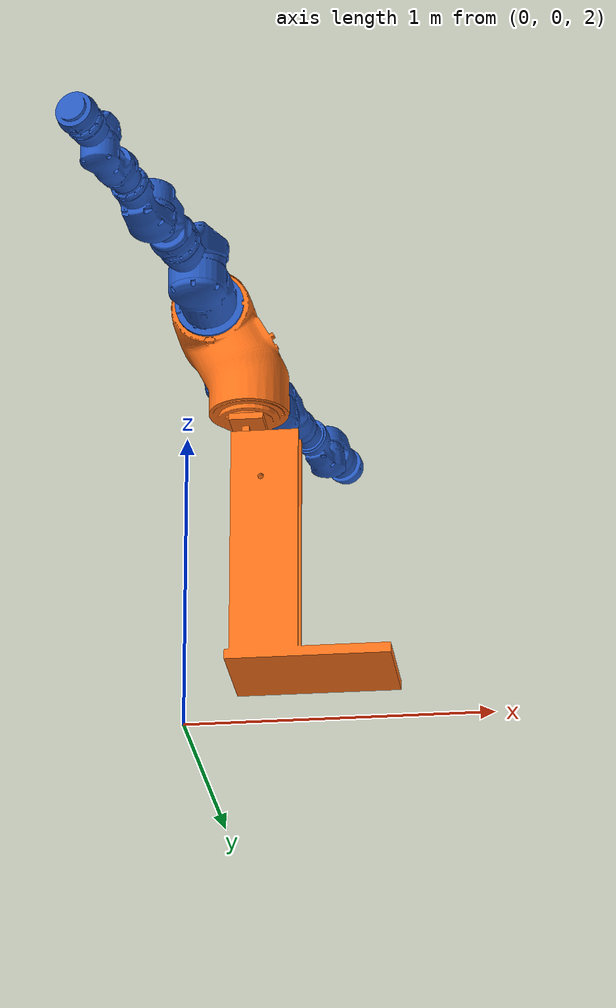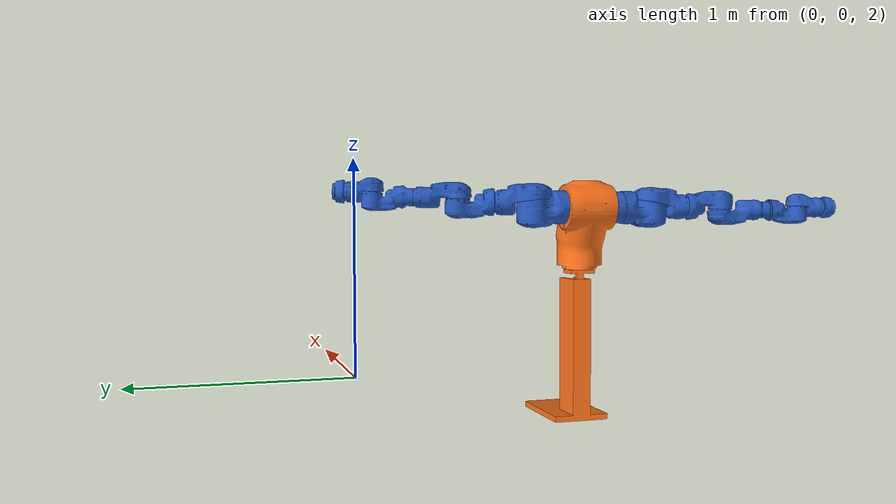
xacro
<?xml version="1.0" encoding="utf-8"?>
<robot xmlns:xacro="http://www.ros.org/wiki/xacro" name="dual_arm">
  <link name="world"/>
  <joint name="world_fixed" type="fixed">
    <parent link="world"/>
    <child link="base_link"/>
    <origin xyz="0 0 1.5" rpy="0 0 0"/>
  </joint>
<link
    name="base_link">
    <inertial>
      <origin
        xyz="0.473639700587231 0.397476333645686 1.26458028542163"
        rpy="0 0 0" />
      <mass
        value="86.6808960041726" />
      <inertia
        ixx="2.67583600672287"
        ixy="1.50972502397836E-05"
        ixz="2.78418630517407E-06"
        iyy="1.18500984520368"
        iyz="0.000347236755515199"
        izz="3.19773833781896" />
    </inertial>
    <visual>
      <origin
        xyz="0 0 0"
        rpy="0 0 0" />
      <geometry>
        <mesh
          filename="file://$(find dual_arm_description)/meshes/base_link.STL" />
      </geometry>
      <material
        name="">
        <color rgba="1.0 0.45 0.10 1" />
      </material>
    </visual>
    <collision>
      <origin
        xyz="0 0 0"
        rpy="0 0 0" />
      <geometry>
        <mesh
          filename="file://$(find dual_arm_description)/meshes/base_link.STL" />
      </geometry>
    </collision>
  </link>
  <link
    name="pinion">
    <inertial>
      <origin
        xyz="0.0200000000002041 -2.00848877902615E-05 -2.09149558783039E-10"
        rpy="0 0 0" />
      <mass
        value="0.365883328771665" />
      <inertia
        ixx="0.000595664172915917"
        ixy="2.53164029756878E-12"
        ixz="-2.6047974978879E-12"
        iyy="0.000346653639764482"
        iyz="-2.39513308665042E-19"
        izz="0.000346579420823879" />
    </inertial>
    <visual>
      <origin
        xyz="0 0 0"
        rpy="0 0 0" />
      <geometry>
        <mesh
          filename="file://$(find dual_arm_description)/meshes/pinion.STL" />
      </geometry>
      <material
        name="">
       <color rgba="1.0 0.45 0.10 1" />
      </material>
    </visual>
    <collision>
      <origin
        xyz="0 0 0"
        rpy="0 0 0" />
      <geometry>
        <mesh
          filename="file://$(find dual_arm_description)/meshes/pinion.STL" />
      </geometry>
    </collision>
  </link>
  <joint
    name="pinion_joint"
    type="revolute">
    <origin
      xyz="0.415954526450101 -1.28459874039883 0.763294581934258"
      rpy="-0.792054492842415 0 1.5707963270975" />
    <parent
      link="base_link" />
    <child
      link="pinion" />
    <axis
      xyz="1 0 0" />

    <limit lower="-0.001" upper="7.2" effort="1000" velocity="20.0"/>
  </joint>
  <link
    name="rack">
    <inertial>
      <origin
        xyz="-0.34822673656725 0.0201228480459993 0.0194191104798078"
        rpy="0 0 0" />
      <mass
        value="1.30035662806491" />
      <inertia
        ixx="0.000934370250237096"
        ixy="0.000311534586056156"
        ixz="9.57189902336692E-17"
        iyy="0.0901106786181563"
        iyz="-5.48242486114933E-19"
        izz="0.0898501876823494" />
    </inertial>
    <visual>
      <origin
        xyz="0 0 0"
        rpy="0 0 0" />
      <geometry>
        <mesh
          filename="file://$(find dual_arm_description)/meshes/rack.STL" />
      </geometry>
      <material
        name="">
        <color rgba="1.0 0.45 0.10 1" />
      </material>
    </visual>
    <collision>
      <origin
        xyz="0 0 0"
        rpy="0 0 0" />
      <geometry>
        <mesh
          filename="file://$(find dual_arm_description)/meshes/rack.STL" />
      </geometry>
    </collision>
  </link>
<joint name="rack_joint" type="prismatic">

    <origin
        xyz="0.3507306 -1.2451796 0.3563869"
        rpy="1.57079633 1.57079631 0.0"/>

    <parent link="base_link"/>
    <child link="rack"/>
    <axis xyz="1 0 0"/>

    <limit
        lower="-0.40"
        upper="0"
        effort="15000"
        velocity="5.0"/>
    <mimic joint="pinion_joint" multiplier="-0.056" offset="0.0"/>

</joint>
  <link
    name="robot_base">
    <inertial>
      <origin
        xyz="0.053787247891486 -6.57709575691001E-09 0.243591748669843"
        rpy="0 0 0" />
      <mass
        value="180.682434357241" />
      <inertia
        ixx="3.41461647052963"
        ixy="-8.4567521463734E-06"
        ixz="-0.860898186770134"
        iyy="3.69209625035624"
        iyz="-2.20264770039672E-05"
        izz="1.86392067216936" />
    </inertial>
    <visual>
      <origin
        xyz="0 0 0"
        rpy="0 0 0" />
      <geometry>
        <mesh
          filename="file://$(find dual_arm_description)/meshes/robot_base.STL" />
      </geometry>
      <material
        name="">
        <color rgba="1.0 0.45 0.10 1" />
      </material>
    </visual>
    <collision>
      <origin
        xyz="0 0 0"
        rpy="0 0 0" />
      <geometry>
        <mesh
          filename="file://$(find dual_arm_description)/meshes/robot_base.STL" />
      </geometry>
    </collision>
  </link>
  <joint
    name="robot_base_joint"
    type="revolute">
    <origin
      xyz="-0.596607717773463 0.0221739313807672 0.019419110479808"
      rpy="1.5707963267949 0.0154911352058023 -1.5707963267949" />
    <parent
      link="rack" />
    <child
      link="robot_base" />
    <axis
      xyz="0 0 1" />

    <limit lower="-3.14159" upper="3.14159" effort="500" velocity="1.0"/>
  </joint>
  <link
    name="shoulder_1">
    <inertial>
      <origin
        xyz="-0.000142226489326436 -0.185886918800612 -0.0124226867365391"
        rpy="0 0 0" />
      <mass
        value="54.1808016622956" />
      <inertia
        ixx="0.576809755027629"
        ixy="0.00131869218758581"
        ixz="-3.08158778427355E-05"
        iyy="0.202212250967377"
        iyz="-0.0487031469307568"
        izz="0.565980560422355" />
    </inertial>
    <visual>
      <origin
        xyz="0 0 0"
        rpy="0 0 0" />
      <geometry>
        <mesh
          filename="file://$(find dual_arm_description)/meshes/shoulder_1.STL" />
      </geometry>
      <material
        name="">
        <color rgba="0.15 0.35 0.75 1" />
      </material>
    </visual>
    <collision>
      <origin
        xyz="0 0 0"
        rpy="0 0 0" />
      <geometry>
        <mesh
          filename="file://$(find dual_arm_description)/meshes/shoulder_1.STL" />
      </geometry>
    </collision>
  </link>
  <joint
    name="shoulder1_joint"
    type="revolute">
    <origin
      xyz="0.0999999999999996 -0.0241857900765396 0.338100000000002"
      rpy="0 0.0827379105878175 0" />
    <parent
      link="robot_base" />
    <child
      link="shoulder_1" />
    <axis
      xyz="0 1 0" />

    <limit lower="-3.14159" upper="3.14159" effort="300" velocity="1.0"/>
  </joint>
  <link
    name="shoulder_2">
    <inertial>
      <origin
        xyz="2.64351001977303E-06 -0.0799489782234601 0.0555528824877178"
        rpy="0 0 0" />
      <mass
        value="23.2361467060609" />
      <inertia
        ixx="0.176824362636223"
        ixy="6.55069390376739E-05"
        ixz="2.86313251110495E-05"
        iyy="0.0744457432963146"
        iyz="-0.0482767275666148"
        izz="0.17354519619659" />
    </inertial>
    <visual>
      <origin
        xyz="0 0 0"
        rpy="0 0 0" />
      <geometry>
        <mesh
          filename="file://$(find dual_arm_description)/meshes/shoulder_2.STL" />
      </geometry>
      <material
        name="">
        <color
          rgba="0.15 0.35 0.75 1" />
      </material>
    </visual>
    <collision>
      <origin
        xyz="0 0 0"
        rpy="0 0 0" />
      <geometry>
        <mesh
          filename="file://$(find dual_arm_description)/meshes/shoulder_2.STL" />
      </geometry>
    </collision>
  </link>
  <joint
    name="shoulder2_joint"
    type="revolute">
    <origin
      xyz="0 -0.271414209923459 0"
      rpy="0 0 -0.229167627412321" />
    <parent
      link="shoulder_1" />
    <child
      link="shoulder_2" />
    <axis
      xyz="0 0 1" />

    <limit lower="-3.14159" upper="3.14159" effort="300" velocity="1.0"/>
  </joint>
  <link
    name="shoulder_3">
    <inertial>
      <origin
        xyz="2.0269373258941E-05 -0.101461663751637 0.0187236433244005"
        rpy="0 0 0" />
      <mass
        value="21.6812614384587" />
      <inertia
        ixx="0.140775833622034"
        ixy="7.26061056237591E-05"
        ixz="-1.52885045812978E-05"
        iyy="0.0446692655518368"
        iyz="0.0130018012369732"
        izz="0.137498092397813" />
    </inertial>
    <visual>
      <origin
        xyz="0 0 0"
        rpy="0 0 0" />
      <geometry>
        <mesh
          filename="file://$(find dual_arm_description)/meshes/shoulder_3.STL" />
      </geometry>
      <material
        name="">
        <color
          rgba="0.15 0.35 0.75 1" />
      </material>
    </visual>
    <collision>
      <origin
        xyz="0 0 0"
        rpy="0 0 0" />
      <geometry>
        <mesh
          filename="file://$(find dual_arm_description)/meshes/shoulder_3.STL" />
      </geometry>
    </collision>
  </link>
  <joint
    name="shoulder3_joint"
    type="revolute">
    <origin
      xyz="0 -0.220721389220933 0.0199999999999971"
      rpy="3.14159265358963 -0.0643419874002776 3.14159265358972" />
    <parent
      link="shoulder_2" />
    <child
      link="shoulder_3" />
    <axis
      xyz="0 1 0" />

    <limit lower="-3.14159" upper="3.14159" effort="250" velocity="1.0"/>
  </joint>
  <link
    name="shoulder_4">
    <inertial>
      <origin
        xyz="7.42665079871418E-05 -0.0929979661811192 -0.0389398298327268"
        rpy="0 0 0" />
      <mass
        value="16.8667613637337" />
      <inertia
        ixx="0.121982720217045"
        ixy="1.46315275211121E-05"
        ixz="-1.8236608600183E-05"
        iyy="0.0293651648264199"
        iyz="0.0229698765862465"
        izz="0.119712728498064" />
    </inertial>
    <visual>
      <origin
        xyz="0 0 0"
        rpy="0 0 0" />
      <geometry>
        <mesh
          filename="file://$(find dual_arm_description)/meshes/shoulder_4.STL" />
      </geometry>
      <material
        name="">
        <color
          rgba="0.15 0.35 0.75 1" />
      </material>
    </visual>
    <collision>
      <origin
        xyz="0 0 0"
        rpy="0 0 0" />
      <geometry>
        <mesh
          filename="file://$(find dual_arm_description)/meshes/shoulder_4.STL" />
      </geometry>
    </collision>
  </link>
  <joint
    name="shoulder4_joint"
    type="revolute">
    <origin
      xyz="0 -0.167278610779079 0"
      rpy="0 0 0.0300433613331277" />
    <parent
      link="shoulder_3" />
    <child
      link="shoulder_4" />
    <axis
      xyz="0 0 1" />

    <limit lower="-3.14159" upper="3.14159" effort="200" velocity="1.0"/>
  </joint>
  <link
    name="shoulder_5">
    <inertial>
      <origin
        xyz="-0.000103397632852609 -0.116404283317781 -0.0133404266945079"
        rpy="0 0 0" />
      <mass
        value="16.012114875255" />
      <inertia
        ixx="0.102103892774043"
        ixy="0.000286041475820842"
        ixz="3.61007756931637E-05"
        iyy="0.0234039542549092"
        iyz="-0.01087484045121"
        izz="0.0990371461738303" />
    </inertial>
    <visual>
      <origin
        xyz="0 0 0"
        rpy="0 0 0" />
      <geometry>
        <mesh
          filename="file://$(find dual_arm_description)/meshes/shoulder_5.STL" />
      </geometry>
      <material
        name="">
        <color
          rgba="0.15 0.35 0.75 1" />
      </material>
    </visual>
    <collision>
      <origin
        xyz="0 0 0"
        rpy="0 0 0" />
      <geometry>
        <mesh
          filename="file://$(find dual_arm_description)/meshes/shoulder_5.STL" />
      </geometry>
    </collision>
  </link>
  <joint
    name="shoulder5_joint"
    type="revolute">
    <origin
      xyz="0 -0.238900817066648 -0.0169999999999841"
      rpy="3.14159265358962 0.0862577451660763 3.14159265358971" />
    <parent
      link="shoulder_4" />
    <child
      link="shoulder_5" />
    <axis
      xyz="0 1 0" />

    <limit lower="-3.14159" upper="3.14159" effort="150" velocity="1.0"/>
  </joint>
  <link
    name="shoulder_6">
    <inertial>
      <origin
        xyz="9.16382560712803E-05 -0.0591980762765189 0.0354989501530101"
        rpy="0 0 0" />
      <mass
        value="9.99233348401322" />
      <inertia
        ixx="0.0351346510437689"
        ixy="1.07900051465205E-05"
        ixz="1.2531573395934E-05"
        iyy="0.0157750421312757"
        iyz="-0.00842650881741281"
        izz="0.0340663498002221" />
    </inertial>
    <visual>
      <origin
        xyz="0 0 0"
        rpy="0 0 0" />
      <geometry>
        <mesh
          filename="file://$(find dual_arm_description)/meshes/shoulder_6.STL" />
      </geometry>
      <material
        name="">
        <color
          rgba="0.15 0.35 0.75 1" />
      </material>
    </visual>
    <collision>
      <origin
        xyz="0 0 0"
        rpy="0 0 0" />
      <geometry>
        <mesh
          filename="file://$(find dual_arm_description)/meshes/shoulder_6.STL" />
      </geometry>
    </collision>
  </link>
  <joint
    name="shoulder6_joint"
    type="revolute">
    <origin
      xyz="0 -0.193899182933342 0"
      rpy="0 0 0.00181201799453098" />
    <parent
      link="shoulder_5" />
    <child
      link="shoulder_6" />
    <axis
      xyz="0 0 1" />

    <limit lower="-3.14159" upper="3.14159" effort="150" velocity="1.0"/>
  </joint>
  <link
    name="wrist">
    <inertial>
      <origin
        xyz="3.53815088338649E-09 -0.019719016020024 6.00787220299548E-05"
        rpy="0 0 0" />
      <mass
        value="3.85935965339355" />
      <inertia
        ixx="0.00370027406173077"
        ixy="5.17686956724803E-10"
        ixz="1.82731544199938E-09"
        iyy="0.00562477151034509"
        iyz="-2.90907545652183E-06"
        izz="0.00375188105106895" />
    </inertial>
    <visual>
      <origin
        xyz="0 0 0"
        rpy="0 0 0" />
      <geometry>
        <mesh
          filename="file://$(find dual_arm_description)/meshes/wrist.STL" />
      </geometry>
      <material
        name="">
        <color
          rgba="0.15 0.35 0.75 1" />
      </material>
    </visual>
    <collision>
      <origin
        xyz="0 0 0"
        rpy="0 0 0" />
      <geometry>
        <mesh
          filename="file://$(find dual_arm_description)/meshes/wrist.STL" />
      </geometry>
    </collision>
  </link>
  <joint
    name="wrist_joint"
    type="revolute">
    <origin
      xyz="0 -0.147100494969631 0.0190000000000441"
      rpy="0 1.13973776372924 0" />
    <parent
      link="shoulder_6" />
    <child
      link="wrist" />
    <axis
      xyz="0 1 0" />

    <limit lower="-3.14159" upper="3.14159" effort="100" velocity="1.0"/>
  </joint>
  <link
    name="shoulderR_1">
    <inertial>
      <origin
        xyz="0.000142297506679379 0.185889948145944 -0.012423095554754"
        rpy="0 0 0" />
      <mass
        value="54.1790150011592" />
      <inertia
        ixx="0.576789696126197"
        ixy="0.0013187668271921"
        ixz="3.07403893550773E-05"
        iyy="0.202201508607996"
        iyz="0.0487011992427635"
        izz="0.565961146324156" />
    </inertial>
    <visual>
      <origin
        xyz="0 0 0"
        rpy="0 0 0" />
      <geometry>
        <mesh
          filename="file://$(find dual_arm_description)/meshes/shoulderR_1.STL" />
      </geometry>
      <material
        name="">
        <color
          rgba="0.15 0.35 0.75 1" />
      </material>
    </visual>
    <collision>
      <origin
        xyz="0 0 0"
        rpy="0 0 0" />
      <geometry>
        <mesh
          filename="file://$(find dual_arm_description)/meshes/shoulderR_1.STL" />
      </geometry>
    </collision>
  </link>
  <joint
    name="shoulderR_joint"
    type="revolute">
    <origin
      xyz="0.0999999999999994 0.0935857900765416 0.338100000000001"
      rpy="0 0 0" />
    <parent
      link="robot_base" />
    <child
      link="shoulderR_1" />
    <axis
      xyz="0 1 0" />

    <limit lower="-3.14159" upper="3.14159" effort="300" velocity="1.0"/>
  </joint>
  <link
    name="shoulderR_2">
    <inertial>
      <origin
        xyz="-2.66637225287969E-06 0.0799489610988506 0.0415528698401191"
        rpy="0 0 0" />
      <mass
        value="23.2361438896345" />
      <inertia
        ixx="0.176824516341927"
        ixy="6.55742892849637E-05"
        ixz="-2.86392358458465E-05"
        iyy="0.0744456947707316"
        iyz="0.0482767230395164"
        izz="0.173545357733114" />
    </inertial>
    <visual>
      <origin
        xyz="0 0 0"
        rpy="0 0 0" />
      <geometry>
        <mesh
          filename="file://$(find dual_arm_description)/meshes/shoulderR_2.STL" />
      </geometry>
      <material
        name="">
        <color
          rgba="0.15 0.35 0.75 1" />
      </material>
    </visual>
    <collision>
      <origin
        xyz="0 0 0"
        rpy="0 0 0" />
      <geometry>
        <mesh
          filename="file://$(find dual_arm_description)/meshes/shoulderR_2.STL" />
      </geometry>
    </collision>
  </link>
  <joint
    name="shoulderR_2_joint"
    type="revolute">
    <origin
      xyz="0 0.271414209923451 0"
      rpy="0 0 -0.183447255760934" />
    <parent
      link="shoulderR_1" />
    <child
      link="shoulderR_2" />
    <axis
      xyz="0 0 1" />

    <limit lower="-3.14159" upper="3.14159" effort="300" velocity="1.0"/>
  </joint>
  <link
    name="shoulderR_3">
    <inertial>
      <origin
        xyz="-2.02678062041217E-05 0.109344295023787 0.0187236337544201"
        rpy="0 0 0" />
      <mass
        value="21.6812478214233" />
      <inertia
        ixx="0.140775854673862"
        ixy="7.26281316312727E-05"
        ixz="1.53135010343263E-05"
        iyy="0.0446692640913248"
        iyz="-0.0130018068200745"
        izz="0.137498102944109" />
    </inertial>
    <visual>
      <origin
        xyz="0 0 0"
        rpy="0 0 0" />
      <geometry>
        <mesh
          filename="file://$(find dual_arm_description)/meshes/shoulderR_3.STL" />
      </geometry>
      <material
        name="">
        <color
          rgba="0.15 0.35 0.75 1" />
      </material>
    </visual>
    <collision>
      <origin
        xyz="0 0 0"
        rpy="0 0 0" />
      <geometry>
        <mesh
          filename="file://$(find dual_arm_description)/meshes/shoulderR_3.STL" />
      </geometry>
    </collision>
  </link>
  <joint
    name="shoulderR_3joint"
    type="revolute">
    <origin
      xyz="0 0.212838780048656 0.00600000000006817"
      rpy="0 0 0" />
    <parent
      link="shoulderR_2" />
    <child
      link="shoulderR_3" />
    <axis
      xyz="0 1 0" />

    <limit lower="-3.14159" upper="3.14159" effort="250" velocity="1.0"/>
  </joint>
  <link
    name="shoulderR_4">
    <inertial>
      <origin
        xyz="-7.42143653571503E-05 0.0929979880480762 -0.0389397838966739"
        rpy="0 0 0" />
      <mass
        value="16.8667424818804" />
      <inertia
        ixx="0.121982652825123"
        ixy="1.46382284423744E-05"
        ixz="1.8411927645162E-05"
        iyy="0.0293651375392702"
        iyz="-0.0229698735865515"
        izz="0.119712779777835" />
    </inertial>
    <visual>
      <origin
        xyz="0 0 0"
        rpy="0 0 0" />
      <geometry>
        <mesh
          filename="file://$(find dual_arm_description)/meshes/shoulderR_4.STL" />
      </geometry>
      <material
        name="">
        <color
          rgba="0.15 0.35 0.75 1" />
      </material>
    </visual>
    <collision>
      <origin
        xyz="0 0 0"
        rpy="0 0 0" />
      <geometry>
        <mesh
          filename="file://$(find dual_arm_description)/meshes/shoulderR_4.STL" />
      </geometry>
    </collision>
  </link>
  <joint
    name="shoulderR_4joint"
    type="revolute">
    <origin
      xyz="0 0.175161219951376 0"
      rpy="0 0 0.0153530989990302" />
    <parent
      link="shoulderR_3" />
    <child
      link="shoulderR_4" />
    <axis
      xyz="0 0 1" />

    <limit lower="-3.14159" upper="3.14159" effort="200" velocity="1.0"/>
  </joint>
  <link
    name="shoulderR_5">
    <inertial>
      <origin
        xyz="0.000103411362486816 0.129623803069163 -0.0133442422859611"
        rpy="0 0 0" />
      <mass
        value="16.010677153563" />
      <inertia
        ixx="0.102092320258326"
        ixy="0.000286033841110442"
        ixz="-3.61081566303249E-05"
        iyy="0.023401039653232"
        iyz="0.0108795771111136"
        izz="0.0990278631984347" />
    </inertial>
    <visual>
      <origin
        xyz="0 0 0"
        rpy="0 0 0" />
      <geometry>
        <mesh
          filename="file://$(find dual_arm_description)/meshes/shoulderR_5.STL" />
      </geometry>
      <material
        name="">
        <color
          rgba="0.15 0.35 0.75 1" />
      </material>
    </visual>
    <collision>
      <origin
        xyz="0 0 0"
        rpy="0 0 0" />
      <geometry>
        <mesh
          filename="file://$(find dual_arm_description)/meshes/shoulderR_5.STL" />
      </geometry>
    </collision>
  </link>
  <joint
    name="shoulderR_5joint"
    type="revolute">
    <origin
      xyz="0 0.225674348890692 -0.0170000000000154"
      rpy="0 0 0" />
    <parent
      link="shoulderR_4" />
    <child
      link="shoulderR_5" />
    <axis
      xyz="0 1 0" />

    <limit lower="-3.14159" upper="3.14159" effort="150" velocity="1.0"/>
  </joint>
  <link
    name="shoulderR_6">
    <inertial>
      <origin
        xyz="-9.16433257388549E-05 0.0591861359720021 0.0305013269743561"
        rpy="0 0 0" />
      <mass
        value="9.99089586049998" />
      <inertia
        ixx="0.0351240230063353"
        ixy="1.08024931554924E-05"
        ixz="-1.2537082435984E-05"
        iyy="0.0157740291438655"
        iyz="0.00842453742520755"
        izz="0.0340561103922042" />
    </inertial>
    <visual>
      <origin
        xyz="0 0 0"
        rpy="0 0 0" />
      <geometry>
        <mesh
          filename="file://$(find dual_arm_description)/meshes/shoulderR_6.STL" />
      </geometry>
      <material
        name="">
        <color
          rgba="0.15 0.35 0.75 1" />
      </material>
    </visual>
    <collision>
      <origin
        xyz="0 0 0"
        rpy="0 0 0" />
      <geometry>
        <mesh
          filename="file://$(find dual_arm_description)/meshes/shoulderR_6.STL" />
      </geometry>
    </collision>
  </link>
  <joint
    name="shoulderR_6joint"
    type="revolute">
    <origin
      xyz="0 0.207125651109296 0"
      rpy="0 0 -0.0600232444858702" />
    <parent
      link="shoulderR_5" />
    <child
      link="shoulderR_6" />
    <axis
      xyz="0 0 1" />

    <limit lower="-3.14159" upper="3.14159" effort="150" velocity="1.0"/>
  </joint>
  <link
    name="wristR">
    <inertial>
      <origin
        xyz="4.21099710656847E-10 0.021503235823682 6.00787650204548E-05"
        rpy="0 0 0" />
      <mass
        value="3.8593596704264" />
      <inertia
        ixx="0.00370027353924814"
        ixy="4.45094899522228E-12"
        ixz="-2.35948445408567E-09"
        iyy="0.00562477164665233"
        iyz="2.90754850341696E-06"
        izz="0.00375188063912726" />
    </inertial>
    <visual>
      <origin
        xyz="0 0 0"
        rpy="0 0 0" />
      <geometry>
        <mesh
          filename="file://$(find dual_arm_description)/meshes/wristR.STL" />
      </geometry>
      <material
        name="">
        <color
          rgba="0.15 0.35 0.75 1" />
      </material>
    </visual>
    <collision>
      <origin
        xyz="0 0 0"
        rpy="0 0 0" />
      <geometry>
        <mesh
          filename="file://$(find dual_arm_description)/meshes/wristR.STL" />
      </geometry>
    </collision>
  </link>
  <joint
    name="wristR_joint"
    type="revolute">
    <origin
      xyz="0 0.150316284003781 0.0140000000000291"
      rpy="0 0 0" />
    <parent
      link="shoulderR_6" />
    <child
      link="wristR" />
    <axis
      xyz="0 1 0" />

    <limit lower="-3.14159" upper="3.14159" effort="100" velocity="1.0"/>
  </joint>

  <ros2_control name="dual_arm_system" type="system">
    <hardware>
      <plugin>gz_ros2_control/GazeboSimSystem</plugin>
    </hardware>
    <joint name="pinion_joint">
      <command_interface name="position">
        <param name="p">1500.0</param>
        <param name="i">200.0</param>
        <param name="d">10.0</param>
      </command_interface>
      <state_interface name="position"/>
      <state_interface name="velocity"/>
    </joint>
    <joint name="rack_joint">
      <param name="mimic">pinion_joint</param>
      <param name="multiplier">-0.056</param>
      <state_interface name="position"/>
      <state_interface name="velocity"/>
    </joint>
    <joint name="robot_base_joint">
      <command_interface name="position">
        <param name="p">300.0</param>
        <param name="i">10.0</param>
        <param name="d">30.0</param>
      </command_interface>
      <state_interface name="position"/>
      <state_interface name="velocity"/>
    </joint>
    <joint name="shoulder1_joint">
      <command_interface name="position">
        <param name="p">350.0</param>
        <param name="i">30.0</param>
        <param name="d">35.0</param>
      </command_interface>
      <state_interface name="position"/>
      <state_interface name="velocity"/>
    </joint>
    <joint name="shoulder2_joint">
      <command_interface name="position">
        <param name="p">350.0</param>
        <param name="i">30.0</param>
        <param name="d">35.0</param>
      </command_interface>
      <state_interface name="position"/>
      <state_interface name="velocity"/>
    </joint>
    <joint name="shoulder3_joint">
      <command_interface name="position">
        <param name="p">280.0</param>
        <param name="i">20.0</param>
        <param name="d">28.0</param>
      </command_interface>
      <state_interface name="position"/>
      <state_interface name="velocity"/>
    </joint>
    <joint name="shoulder4_joint">
      <command_interface name="position">
        <param name="p">160.0</param>
        <param name="i">12.0</param>
        <param name="d">16.0</param>
      </command_interface>
      <state_interface name="position"/>
      <state_interface name="velocity"/>
    </joint>
    <joint name="shoulder5_joint">
      <command_interface name="position">
        <param name="p">160.0</param>
        <param name="i">12.0</param>
        <param name="d">16.0</param>
      </command_interface>
      <state_interface name="position"/>
      <state_interface name="velocity"/>
    </joint>
    <joint name="shoulder6_joint">
      <command_interface name="position">
        <param name="p">140.0</param>
        <param name="i">8.0</param>
        <param name="d">14.0</param>
      </command_interface>
      <state_interface name="position"/>
      <state_interface name="velocity"/>
    </joint>
    <joint name="wrist_joint">
      <command_interface name="position">
        <param name="p">120.0</param>
        <param name="i">6.0</param>
        <param name="d">12.0</param>
      </command_interface>
      <state_interface name="position"/>
      <state_interface name="velocity"/>
    </joint>

    <!-- Right arm: same boosted, mirrored gains -->
    <joint name="shoulderR_joint">
      <command_interface name="position">
        <param name="p">350.0</param>
        <param name="i">30.0</param>
        <param name="d">35.0</param>
      </command_interface>
      <state_interface name="position"/>
      <state_interface name="velocity"/>
    </joint>
    <joint name="shoulderR_2_joint">
      <command_interface name="position">
        <param name="p">350.0</param>
        <param name="i">30.0</param>
        <param name="d">35.0</param>
      </command_interface>
      <state_interface name="position"/>
      <state_interface name="velocity"/>
    </joint>
    <joint name="shoulderR_3joint">
      <command_interface name="position">
        <param name="p">280.0</param>
        <param name="i">20.0</param>
        <param name="d">28.0</param>
      </command_interface>
      <state_interface name="position"/>
      <state_interface name="velocity"/>
    </joint>
    <joint name="shoulderR_4joint">
      <command_interface name="position">
        <param name="p">160.0</param>
        <param name="i">12.0</param>
        <param name="d">16.0</param>
      </command_interface>
      <state_interface name="position"/>
      <state_interface name="velocity"/>
    </joint>
    <joint name="shoulderR_5joint">
      <command_interface name="position">
        <param name="p">160.0</param>
        <param name="i">12.0</param>
        <param name="d">16.0</param>
      </command_interface>
      <state_interface name="position"/>
      <state_interface name="velocity"/>
    </joint>
    <joint name="shoulderR_6joint">
      <command_interface name="position">
        <param name="p">140.0</param>
        <param name="i">8.0</param>
        <param name="d">14.0</param>
      </command_interface>
      <state_interface name="position"/>
      <state_interface name="velocity"/>
    </joint>
    <joint name="wristR_joint">
      <command_interface name="position">
        <param name="p">120.0</param>
        <param name="i">6.0</param>
        <param name="d">12.0</param>
      </command_interface>
      <state_interface name="position"/>
      <state_interface name="velocity"/>
    </joint>
  </ros2_control>
  <gazebo>
    <plugin filename="gz_ros2_control-system" name="gz_ros2_control::GazeboSimROS2ControlPlugin">
      <parameters>$(find dual_arm_control)/config/dual_arm_controllers.yaml</parameters>
    </plugin>
  </gazebo>
</robot>
